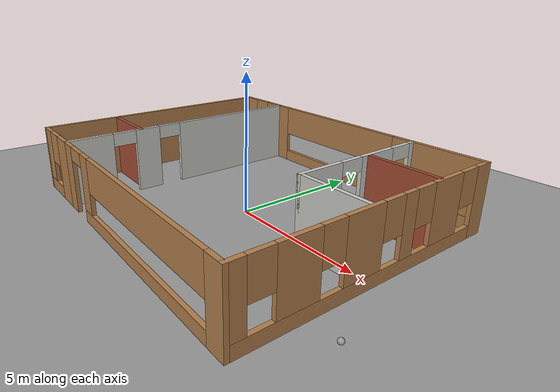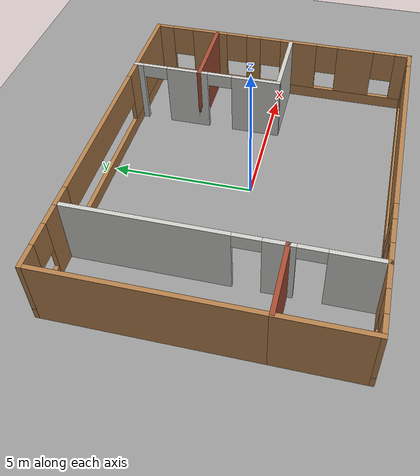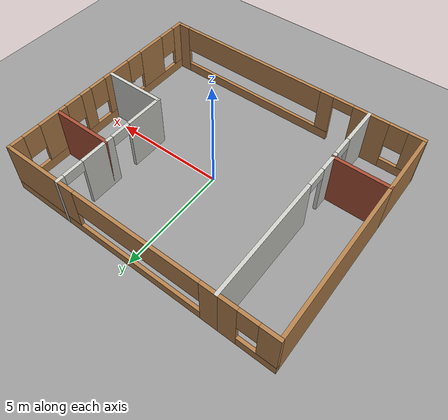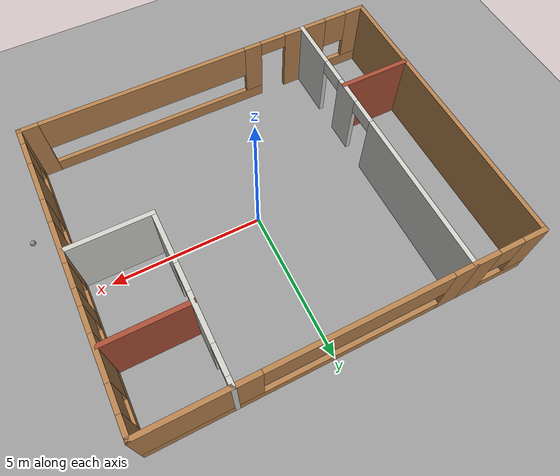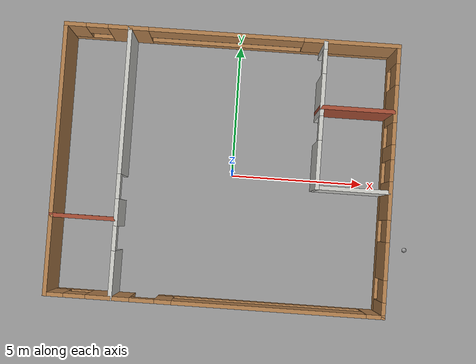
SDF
<sdf version="1.6">
 <world name="default">
  <model name="ground_plane">
   <static>1</static>
   <link name="link">
    <collision name="collision">
     <geometry><plane><normal>0 0 1</normal><size>100 100</size></plane></geometry>
     <surface><friction><ode><mu>100</mu><mu2>50</mu2></ode></friction></surface>
    </collision>
    <visual name="visual">
     <cast_shadows>0</cast_shadows>
     <geometry><plane><normal>0 0 1</normal><size>100 100</size></plane></geometry>
     <material>
      <script><uri>file://media/materials/scripts/gazebo.material</uri><name>Gazebo/Grey</name></script>
     </material>
    </visual>
   </link>
  </model>
  <model name="myhome">
   <pose>-0.34275 0.090909 0 0 -0 0</pose>
   <link name="Wall_0">
    <pose>-3.75 -0.000595 0 0 -0 1.5708</pose>
    <visual name="Wall_0_Visual_0">
     <pose>-4.10972 0 1.25 0 -0 0</pose>
     <geometry><box><size>1.78056 0.15 2.5</size></box></geometry>
     <material>
      <script><uri>file://media/materials/scripts/gazebo.material</uri><name>Gazebo/CeilingTiled</name></script>
      <ambient>0.435294 0.796078 0.67451 1</ambient>
     </material>
     <meta><layer>0</layer></meta>
    </visual>
    <collision name="Wall_0_Collision_0">
     <geometry><box><size>1.78056 0.15 2.5</size></box></geometry>
     <pose>-4.10972 0 1.25 0 -0 0</pose>
    </collision>
    <visual name="Wall_0_Visual_1">
     <pose>-1.82497 0 1.25 0 -0 0</pose>
     <geometry><box><size>0.988927 0.15 2.5</size></box></geometry>
     <material>
      <script><uri>file://media/materials/scripts/gazebo.material</uri><name>Gazebo/CeilingTiled</name></script>
      <ambient>0.435294 0.796078 0.67451 1</ambient>
     </material>
     <meta><layer>0</layer></meta>
    </visual>
    <collision name="Wall_0_Collision_1">
     <geometry><box><size>0.988927 0.15 2.5</size></box></geometry>
     <pose>-1.82497 0 1.25 0 -0 0</pose>
    </collision>
    <visual name="Wall_0_Visual_2">
     <pose>2.28474 0 1.25 0 -0 0</pose>
     <geometry><box><size>5.43051 0.15 2.5</size></box></geometry>
     <material>
      <script><uri>file://media/materials/scripts/gazebo.material</uri><name>Gazebo/CeilingTiled</name></script>
      <ambient>0.435294 0.796078 0.67451 1</ambient>
     </material>
     <meta><layer>0</layer></meta>
    </visual>
    <collision name="Wall_0_Collision_2">
     <geometry><box><size>5.43051 0.15 2.5</size></box></geometry>
     <pose>2.28474 0 1.25 0 -0 0</pose>
    </collision>
    <visual name="Wall_0_Visual_3">
     <pose>-2.76944 0 2.25 0 -0 0</pose>
     <geometry><box><size>0.9 0.15 0.5</size></box></geometry>
     <material>
      <script><uri>file://media/materials/scripts/gazebo.material</uri><name>Gazebo/CeilingTiled</name></script>
      <ambient>0.435294 0.796078 0.67451 1</ambient>
     </material>
     <meta><layer>0</layer></meta>
    </visual>
    <collision name="Wall_0_Collision_3">
     <geometry><box><size>0.9 0.15 0.5</size></box></geometry>
     <pose>-2.76944 0 2.25 0 -0 0</pose>
    </collision>
    <visual name="Wall_0_Visual_4">
     <pose>-0.880511 0 2.25 0 -0 0</pose>
     <geometry><box><size>0.9 0.15 0.5</size></box></geometry>
     <material>
      <script><uri>file://media/materials/scripts/gazebo.material</uri><name>Gazebo/CeilingTiled</name></script>
      <ambient>0.435294 0.796078 0.67451 1</ambient>
     </material>
     <meta><layer>0</layer></meta>
    </visual>
    <collision name="Wall_0_Collision_4">
     <geometry><box><size>0.9 0.15 0.5</size></box></geometry>
     <pose>-0.880511 0 2.25 0 -0 0</pose>
    </collision>
   </link>
   <link name="Wall_1">
    <pose>1.175 4.92441 0 0 -0 0</pose>
    <visual name="Wall_1_Visual_0">
     <pose>-4.62399 0 1.25 0 -0 0</pose>
     <geometry><box><size>0.752024 0.15 2.5</size></box></geometry>
     <material>
      <script><uri>file://media/materials/scripts/gazebo.material</uri><name>Gazebo/Wood</name></script>
      <ambient>1 1 1 1</ambient>
     </material>
     <meta><layer>0</layer></meta>
    </visual>
    <collision name="Wall_1_Collision_0">
     <geometry><box><size>0.752024 0.15 2.5</size></box></geometry>
     <pose>-4.62399 0 1.25 0 -0 0</pose>
    </collision>
    <visual name="Wall_1_Visual_1">
     <pose>0.376012 0 0.25 0 -0 0</pose>
     <geometry><box><size>9.24798 0.15 0.5</size></box></geometry>
     <material>
      <script><uri>file://media/materials/scripts/gazebo.material</uri><name>Gazebo/Wood</name></script>
      <ambient>1 1 1 1</ambient>
     </material>
     <meta><layer>0</layer></meta>
    </visual>
    <collision name="Wall_1_Collision_1">
     <geometry><box><size>9.24798 0.15 0.5</size></box></geometry>
     <pose>0.376012 0 0.25 0 -0 0</pose>
    </collision>
    <visual name="Wall_1_Visual_2">
     <pose>3.22462 0 1.5 0 -0 0</pose>
     <geometry><box><size>3.55076 0.15 2</size></box></geometry>
     <material>
      <script><uri>file://media/materials/scripts/gazebo.material</uri><name>Gazebo/Wood</name></script>
      <ambient>1 1 1 1</ambient>
     </material>
     <meta><layer>0</layer></meta>
    </visual>
    <collision name="Wall_1_Collision_2">
     <geometry><box><size>3.55076 0.15 2</size></box></geometry>
     <pose>3.22462 0 1.5 0 -0 0</pose>
    </collision>
    <visual name="Wall_1_Visual_3">
     <pose>-1.39937 0 1.9 0 -0 0</pose>
     <geometry><box><size>5.69722 0.15 1.2</size></box></geometry>
     <material>
      <script><uri>file://media/materials/scripts/gazebo.material</uri><name>Gazebo/Wood</name></script>
      <ambient>1 1 1 1</ambient>
     </material>
     <meta><layer>0</layer></meta>
    </visual>
    <collision name="Wall_1_Collision_3">
     <geometry><box><size>5.69722 0.15 1.2</size></box></geometry>
     <pose>-1.39937 0 1.9 0 -0 0</pose>
    </collision>
   </link>
   <link name="Wall_10">
    <pose>-4.925 4.92441 0 0 -0 3.14159</pose>
    <visual name="Wall_10_Visual_0">
     <pose>-0.805413 0 1.25 0 -0 0</pose>
     <geometry><box><size>0.889174 0.15 2.5</size></box></geometry>
     <material>
      <script><uri>file://media/materials/scripts/gazebo.material</uri><name>Gazebo/Wood</name></script>
      <ambient>1 1 1 1</ambient>
     </material>
     <meta><layer>0</layer></meta>
    </visual>
    <collision name="Wall_10_Collision_0">
     <geometry><box><size>0.889174 0.15 2.5</size></box></geometry>
     <pose>-0.805413 0 1.25 0 -0 0</pose>
    </collision>
    <visual name="Wall_10_Visual_1">
     <pose>0.444587 0 0.25 0 -0 0</pose>
     <geometry><box><size>1.61083 0.15 0.5</size></box></geometry>
     <material>
      <script><uri>file://media/materials/scripts/gazebo.material</uri><name>Gazebo/Wood</name></script>
      <ambient>1 1 1 1</ambient>
     </material>
     <meta><layer>0</layer></meta>
    </visual>
    <collision name="Wall_10_Collision_1">
     <geometry><box><size>1.61083 0.15 0.5</size></box></geometry>
     <pose>0.444587 0 0.25 0 -0 0</pose>
    </collision>
    <visual name="Wall_10_Visual_2">
     <pose>0.844587 0 1.5 0 -0 0</pose>
     <geometry><box><size>0.810826 0.15 2</size></box></geometry>
     <material>
      <script><uri>file://media/materials/scripts/gazebo.material</uri><name>Gazebo/Wood</name></script>
      <ambient>1 1 1 1</ambient>
     </material>
     <meta><layer>0</layer></meta>
    </visual>
    <collision name="Wall_10_Collision_2">
     <geometry><box><size>0.810826 0.15 2</size></box></geometry>
     <pose>0.844587 0 1.5 0 -0 0</pose>
    </collision>
    <visual name="Wall_10_Visual_3">
     <pose>0.039174 0 1.9 0 -0 0</pose>
     <geometry><box><size>0.8 0.15 1.2</size></box></geometry>
     <material>
      <script><uri>file://media/materials/scripts/gazebo.material</uri><name>Gazebo/Wood</name></script>
      <ambient>1 1 1 1</ambient>
     </material>
     <meta><layer>0</layer></meta>
    </visual>
    <collision name="Wall_10_Collision_3">
     <geometry><box><size>0.8 0.15 1.2</size></box></geometry>
     <pose>0.039174 0 1.9 0 -0 0</pose>
    </collision>
   </link>
   <link name="Wall_12">
    <pose>3.43106 2.2506 0 0 0 -1.5708</pose>
    <visual name="Wall_12_Visual_0">
     <pose>-2.57021 0 1.25 0 -0 0</pose>
     <geometry><box><size>0.359583 0.15 2.5</size></box></geometry>
     <material>
      <script><uri>file://media/materials/scripts/gazebo.material</uri><name>Gazebo/CeilingTiled</name></script>
      <ambient>0.435294 0.796078 0.67451 1</ambient>
     </material>
     <meta><layer>0</layer></meta>
    </visual>
    <collision name="Wall_12_Collision_0">
     <geometry><box><size>0.359583 0.15 2.5</size></box></geometry>
     <pose>-2.57021 0 1.25 0 -0 0</pose>
    </collision>
    <visual name="Wall_12_Visual_1">
     <pose>-0.716113 0 1.25 0 -0 0</pose>
     <geometry><box><size>1.54861 0.15 2.5</size></box></geometry>
     <material>
      <script><uri>file://media/materials/scripts/gazebo.material</uri><name>Gazebo/CeilingTiled</name></script>
      <ambient>0.435294 0.796078 0.67451 1</ambient>
     </material>
     <meta><layer>0</layer></meta>
    </visual>
    <collision name="Wall_12_Collision_1">
     <geometry><box><size>1.54861 0.15 2.5</size></box></geometry>
     <pose>-0.716113 0 1.25 0 -0 0</pose>
    </collision>
    <visual name="Wall_12_Visual_2">
     <pose>1.8541 0 1.25 0 -0 0</pose>
     <geometry><box><size>1.79181 0.15 2.5</size></box></geometry>
     <material>
      <script><uri>file://media/materials/scripts/gazebo.material</uri><name>Gazebo/CeilingTiled</name></script>
      <ambient>0.435294 0.796078 0.67451 1</ambient>
     </material>
     <meta><layer>0</layer></meta>
    </visual>
    <collision name="Wall_12_Collision_2">
     <geometry><box><size>1.79181 0.15 2.5</size></box></geometry>
     <pose>1.8541 0 1.25 0 -0 0</pose>
    </collision>
    <visual name="Wall_12_Visual_3">
     <pose>-1.94042 0 2.25 0 -0 0</pose>
     <geometry><box><size>0.9 0.15 0.5</size></box></geometry>
     <material>
      <script><uri>file://media/materials/scripts/gazebo.material</uri><name>Gazebo/CeilingTiled</name></script>
      <ambient>0.435294 0.796078 0.67451 1</ambient>
     </material>
     <meta><layer>0</layer></meta>
    </visual>
    <collision name="Wall_12_Collision_3">
     <geometry><box><size>0.9 0.15 0.5</size></box></geometry>
     <pose>-1.94042 0 2.25 0 -0 0</pose>
    </collision>
    <visual name="Wall_12_Visual_4">
     <pose>0.508191 0 2.25 0 -0 0</pose>
     <geometry><box><size>0.9 0.15 0.5</size></box></geometry>
     <material>
      <script><uri>file://media/materials/scripts/gazebo.material</uri><name>Gazebo/CeilingTiled</name></script>
      <ambient>0.435294 0.796078 0.67451 1</ambient>
     </material>
     <meta><layer>0</layer></meta>
    </visual>
    <collision name="Wall_12_Collision_4">
     <geometry><box><size>0.9 0.15 0.5</size></box></geometry>
     <pose>0.508191 0 2.25 0 -0 0</pose>
    </collision>
   </link>
   <link name="Wall_13">
    <collision name="Wall_13_Collision">
     <geometry><box><size>2.75 0.15 2.5</size></box></geometry>
     <pose>0 0 1.25 0 -0 0</pose>
    </collision>
    <visual name="Wall_13_Visual">
     <pose>0 0 1.25 0 -0 0</pose>
     <geometry><box><size>2.75 0.15 2.5</size></box></geometry>
     <material>
      <script><uri>file://media/materials/scripts/gazebo.material</uri><name>Gazebo/CeilingTiled</name></script>
      <ambient>0.435294 0.796078 0.67451 1</ambient>
     </material>
     <meta><layer>0</layer></meta>
    </visual>
    <pose>4.73106 -0.424405 0 0 -0 0</pose>
   </link>
   <link name="Wall_15">
    <collision name="Wall_15_Collision">
     <geometry><box><size>2.75 0.15 2.5</size></box></geometry>
     <pose>0 0 1.25 0 -0 0</pose>
    </collision>
    <visual name="Wall_15_Visual">
     <pose>0 0 1.25 0 -0 0</pose>
     <geometry><box><size>2.75 0.15 2.5</size></box></geometry>
     <material>
      <script><uri>file://media/materials/scripts/gazebo.material</uri><name>Gazebo/Bricks</name></script>
      <ambient>1 1 1 1</ambient>
     </material>
     <meta><layer>0</layer></meta>
    </visual>
    <pose>4.73106 2.51197 0 0 -0 0</pose>
   </link>
   <link name="Wall_2">
    <pose>6.1 -0.000595 0 0 0 -1.5708</pose>
    <visual name="Wall_2_Visual_0">
     <pose>-4.64714 0 1.25 0 -0 0</pose>
     <geometry><box><size>0.705724 0.15 2.5</size></box></geometry>
     <material>
      <script><uri>file://media/materials/scripts/gazebo.material</uri><name>Gazebo/Wood</name></script>
      <ambient>1 1 1 1</ambient>
     </material>
     <meta><layer>0</layer></meta>
    </visual>
    <collision name="Wall_2_Collision_0">
     <geometry><box><size>0.705724 0.15 2.5</size></box></geometry>
     <pose>-4.64714 0 1.25 0 -0 0</pose>
    </collision>
    <visual name="Wall_2_Visual_1">
     <pose>0.352862 0 0.25 0 -0 0</pose>
     <geometry><box><size>9.29428 0.15 0.5</size></box></geometry>
     <material>
      <script><uri>file://media/materials/scripts/gazebo.material</uri><name>Gazebo/Wood</name></script>
      <ambient>1 1 1 1</ambient>
     </material>
     <meta><layer>0</layer></meta>
    </visual>
    <collision name="Wall_2_Collision_1">
     <geometry><box><size>9.29428 0.15 0.5</size></box></geometry>
     <pose>0.352862 0 0.25 0 -0 0</pose>
    </collision>
    <visual name="Wall_2_Visual_2">
     <pose>-2.80989 0 1.5 0 -0 0</pose>
     <geometry><box><size>1.36877 0.15 2</size></box></geometry>
     <material>
      <script><uri>file://media/materials/scripts/gazebo.material</uri><name>Gazebo/Wood</name></script>
      <ambient>1 1 1 1</ambient>
     </material>
     <meta><layer>0</layer></meta>
    </visual>
    <collision name="Wall_2_Collision_2">
     <geometry><box><size>1.36877 0.15 2</size></box></geometry>
     <pose>-2.80989 0 1.5 0 -0 0</pose>
    </collision>
    <visual name="Wall_2_Visual_3">
     <pose>-1.05214 0 1.5 0 -0 0</pose>
     <geometry><box><size>0.546735 0.15 2</size></box></geometry>
     <material>
      <script><uri>file://media/materials/scripts/gazebo.material</uri><name>Gazebo/Wood</name></script>
      <ambient>1 1 1 1</ambient>
     </material>
     <meta><layer>0</layer></meta>
    </visual>
    <collision name="Wall_2_Collision_3">
     <geometry><box><size>0.546735 0.15 2</size></box></geometry>
     <pose>-1.05214 0 1.5 0 -0 0</pose>
    </collision>
    <visual name="Wall_2_Visual_4">
     <pose>0.7231 0 1.5 0 -0 0</pose>
     <geometry><box><size>1.40375 0.15 2</size></box></geometry>
     <material>
      <script><uri>file://media/materials/scripts/gazebo.material</uri><name>Gazebo/Wood</name></script>
      <ambient>1 1 1 1</ambient>
     </material>
     <meta><layer>0</layer></meta>
    </visual>
    <collision name="Wall_2_Collision_4">
     <geometry><box><size>1.40375 0.15 2</size></box></geometry>
     <pose>0.7231 0 1.5 0 -0 0</pose>
    </collision>
    <visual name="Wall_2_Visual_5">
     <pose>2.90936 0 1.5 0 -0 0</pose>
     <geometry><box><size>1.36877 0.15 2</size></box></geometry>
     <material>
      <script><uri>file://media/materials/scripts/gazebo.material</uri><name>Gazebo/Wood</name></script>
      <ambient>1 1 1 1</ambient>
     </material>
     <meta><layer>0</layer></meta>
    </visual>
    <collision name="Wall_2_Collision_5">
     <geometry><box><size>1.36877 0.15 2</size></box></geometry>
     <pose>2.90936 0 1.5 0 -0 0</pose>
    </collision>
    <visual name="Wall_2_Visual_6">
     <pose>4.69687 0 1.5 0 -0 0</pose>
     <geometry><box><size>0.606258 0.15 2</size></box></geometry>
     <material>
      <script><uri>file://media/materials/scripts/gazebo.material</uri><name>Gazebo/Wood</name></script>
      <ambient>1 1 1 1</ambient>
     </material>
     <meta><layer>0</layer></meta>
    </visual>
    <collision name="Wall_2_Collision_6">
     <geometry><box><size>0.606258 0.15 2</size></box></geometry>
     <pose>4.69687 0 1.5 0 -0 0</pose>
    </collision>
    <visual name="Wall_2_Visual_7">
     <pose>-3.89428 0 1.9 0 -0 0</pose>
     <geometry><box><size>0.8 0.15 1.2</size></box></geometry>
     <material>
      <script><uri>file://media/materials/scripts/gazebo.material</uri><name>Gazebo/Wood</name></script>
      <ambient>1 1 1 1</ambient>
     </material>
     <meta><layer>0</layer></meta>
    </visual>
    <collision name="Wall_2_Collision_7">
     <geometry><box><size>0.8 0.15 1.2</size></box></geometry>
     <pose>-3.89428 0 1.9 0 -0 0</pose>
    </collision>
    <visual name="Wall_2_Visual_8">
     <pose>-1.72551 0 1.9 0 -0 0</pose>
     <geometry><box><size>0.8 0.15 1.2</size></box></geometry>
     <material>
      <script><uri>file://media/materials/scripts/gazebo.material</uri><name>Gazebo/Wood</name></script>
      <ambient>1 1 1 1</ambient>
     </material>
     <meta><layer>0</layer></meta>
    </visual>
    <collision name="Wall_2_Collision_8">
     <geometry><box><size>0.8 0.15 1.2</size></box></geometry>
     <pose>-1.72551 0 1.9 0 -0 0</pose>
    </collision>
    <visual name="Wall_2_Visual_9">
     <pose>-0.378773 0 1.9 0 -0 0</pose>
     <geometry><box><size>0.8 0.15 1.2</size></box></geometry>
     <material>
      <script><uri>file://media/materials/scripts/gazebo.material</uri><name>Gazebo/Wood</name></script>
      <ambient>1 1 1 1</ambient>
     </material>
     <meta><layer>0</layer></meta>
    </visual>
    <collision name="Wall_2_Collision_9">
     <geometry><box><size>0.8 0.15 1.2</size></box></geometry>
     <pose>-0.378773 0 1.9 0 -0 0</pose>
    </collision>
    <visual name="Wall_2_Visual_10">
     <pose>1.82497 0 1.9 0 -0 0</pose>
     <geometry><box><size>0.8 0.15 1.2</size></box></geometry>
     <material>
      <script><uri>file://media/materials/scripts/gazebo.material</uri><name>Gazebo/Wood</name></script>
      <ambient>1 1 1 1</ambient>
     </material>
     <meta><layer>0</layer></meta>
    </visual>
    <collision name="Wall_2_Collision_10">
     <geometry><box><size>0.8 0.15 1.2</size></box></geometry>
     <pose>1.82497 0 1.9 0 -0 0</pose>
    </collision>
    <visual name="Wall_2_Visual_11">
     <pose>3.99374 0 1.9 0 -0 0</pose>
     <geometry><box><size>0.8 0.15 1.2</size></box></geometry>
     <material>
      <script><uri>file://media/materials/scripts/gazebo.material</uri><name>Gazebo/Wood</name></script>
      <ambient>1 1 1 1</ambient>
     </material>
     <meta><layer>0</layer></meta>
    </visual>
    <collision name="Wall_2_Collision_11">
     <geometry><box><size>0.8 0.15 1.2</size></box></geometry>
     <pose>3.99374 0 1.9 0 -0 0</pose>
    </collision>
   </link>
   <link name="Wall_3">
    <pose>1.175 -4.9256 0 0 -0 3.14159</pose>
    <visual name="Wall_3_Visual_0">
     <pose>-4.65881 0 1.25 0 -0 0</pose>
     <geometry><box><size>0.682388 0.15 2.5</size></box></geometry>
     <material>
      <script><uri>file://media/materials/scripts/gazebo.material</uri><name>Gazebo/Wood</name></script>
      <ambient>1 1 1 1</ambient>
     </material>
     <meta><layer>0</layer></meta>
    </visual>
    <collision name="Wall_3_Collision_0">
     <geometry><box><size>0.682388 0.15 2.5</size></box></geometry>
     <pose>-4.65881 0 1.25 0 -0 0</pose>
    </collision>
    <visual name="Wall_3_Visual_1">
     <pose>4.61401 0 1.25 0 -0 0</pose>
     <geometry><box><size>0.771985 0.15 2.5</size></box></geometry>
     <material>
      <script><uri>file://media/materials/scripts/gazebo.material</uri><name>Gazebo/Wood</name></script>
      <ambient>1 1 1 1</ambient>
     </material>
     <meta><layer>0</layer></meta>
    </visual>
    <collision name="Wall_3_Collision_1">
     <geometry><box><size>0.771985 0.15 2.5</size></box></geometry>
     <pose>4.61401 0 1.25 0 -0 0</pose>
    </collision>
    <visual name="Wall_3_Visual_2">
     <pose>-0.494798 0 0.25 0 -0 0</pose>
     <geometry><box><size>7.64563 0.15 0.5</size></box></geometry>
     <material>
      <script><uri>file://media/materials/scripts/gazebo.material</uri><name>Gazebo/Wood</name></script>
      <ambient>1 1 1 1</ambient>
     </material>
     <meta><layer>0</layer></meta>
    </visual>
    <collision name="Wall_3_Collision_2">
     <geometry><box><size>7.64563 0.15 0.5</size></box></geometry>
     <pose>-0.494798 0 0.25 0 -0 0</pose>
    </collision>
    <visual name="Wall_3_Visual_3">
     <pose>3.01843 0 1.5 0 -0 0</pose>
     <geometry><box><size>0.619165 0.15 2</size></box></geometry>
     <material>
      <script><uri>file://media/materials/scripts/gazebo.material</uri><name>Gazebo/Wood</name></script>
      <ambient>1 1 1 1</ambient>
     </material>
     <meta><layer>0</layer></meta>
    </visual>
    <collision name="Wall_3_Collision_3">
     <geometry><box><size>0.619165 0.15 2</size></box></geometry>
     <pose>3.01843 0 1.5 0 -0 0</pose>
    </collision>
    <visual name="Wall_3_Visual_4">
     <pose>-0.804381 0 1.9 0 -0 0</pose>
     <geometry><box><size>7.02646 0.15 1.2</size></box></geometry>
     <material>
      <script><uri>file://media/materials/scripts/gazebo.material</uri><name>Gazebo/Wood</name></script>
      <ambient>1 1 1 1</ambient>
     </material>
     <meta><layer>0</layer></meta>
    </visual>
    <collision name="Wall_3_Collision_4">
     <geometry><box><size>7.02646 0.15 1.2</size></box></geometry>
     <pose>-0.804381 0 1.9 0 -0 0</pose>
    </collision>
    <visual name="Wall_3_Visual_5">
     <pose>3.77801 0 2.25 0 -0 0</pose>
     <geometry><box><size>0.9 0.15 0.5</size></box></geometry>
     <material>
      <script><uri>file://media/materials/scripts/gazebo.material</uri><name>Gazebo/Wood</name></script>
      <ambient>1 1 1 1</ambient>
     </material>
     <meta><layer>0</layer></meta>
    </visual>
    <collision name="Wall_3_Collision_5">
     <geometry><box><size>0.9 0.15 0.5</size></box></geometry>
     <pose>3.77801 0 2.25 0 -0 0</pose>
    </collision>
   </link>
   <link name="Wall_4">
    <pose>-4.925 -4.9256 0 0 -0 3.14159</pose>
    <visual name="Wall_4_Visual_0">
     <pose>-0.770433 0 1.25 0 -0 0</pose>
     <geometry><box><size>0.959134 0.15 2.5</size></box></geometry>
     <material>
      <script><uri>file://media/materials/scripts/gazebo.material</uri><name>Gazebo/Wood</name></script>
      <ambient>1 1 1 1</ambient>
     </material>
     <meta><layer>0</layer></meta>
    </visual>
    <collision name="Wall_4_Collision_0">
     <geometry><box><size>0.959134 0.15 2.5</size></box></geometry>
     <pose>-0.770433 0 1.25 0 -0 0</pose>
    </collision>
    <visual name="Wall_4_Visual_1">
     <pose>0.479567 0 0.25 0 -0 0</pose>
     <geometry><box><size>1.54087 0.15 0.5</size></box></geometry>
     <material>
      <script><uri>file://media/materials/scripts/gazebo.material</uri><name>Gazebo/Wood</name></script>
      <ambient>1 1 1 1</ambient>
     </material>
     <meta><layer>0</layer></meta>
    </visual>
    <collision name="Wall_4_Collision_1">
     <geometry><box><size>1.54087 0.15 0.5</size></box></geometry>
     <pose>0.479567 0 0.25 0 -0 0</pose>
    </collision>
    <visual name="Wall_4_Visual_2">
     <pose>0.879567 0 1.5 0 -0 0</pose>
     <geometry><box><size>0.740866 0.15 2</size></box></geometry>
     <material>
      <script><uri>file://media/materials/scripts/gazebo.material</uri><name>Gazebo/Wood</name></script>
      <ambient>1 1 1 1</ambient>
     </material>
     <meta><layer>0</layer></meta>
    </visual>
    <collision name="Wall_4_Collision_2">
     <geometry><box><size>0.740866 0.15 2</size></box></geometry>
     <pose>0.879567 0 1.5 0 -0 0</pose>
    </collision>
    <visual name="Wall_4_Visual_3">
     <pose>0.109134 0 1.9 0 -0 0</pose>
     <geometry><box><size>0.8 0.15 1.2</size></box></geometry>
     <material>
      <script><uri>file://media/materials/scripts/gazebo.material</uri><name>Gazebo/Wood</name></script>
      <ambient>1 1 1 1</ambient>
     </material>
     <meta><layer>0</layer></meta>
    </visual>
    <collision name="Wall_4_Collision_3">
     <geometry><box><size>0.8 0.15 1.2</size></box></geometry>
     <pose>0.109134 0 1.9 0 -0 0</pose>
    </collision>
   </link>
   <link name="Wall_5">
    <collision name="Wall_5_Collision">
     <geometry><box><size>3 0.15 2.5</size></box></geometry>
     <pose>0 0 1.25 0 -0 0</pose>
    </collision>
    <visual name="Wall_5_Visual">
     <pose>0 0 1.25 0 -0 0</pose>
     <geometry><box><size>3 0.15 2.5</size></box></geometry>
     <material>
      <script><uri>file://media/materials/scripts/gazebo.material</uri><name>Gazebo/Wood</name></script>
      <ambient>1 1 1 1</ambient>
     </material>
     <meta><layer>0</layer></meta>
    </visual>
    <pose>-6.1 -3.5006 0 0 -0 1.5708</pose>
   </link>
   <link name="Wall_6">
    <collision name="Wall_6_Collision">
     <geometry><box><size>2.5 0.15 2.5</size></box></geometry>
     <pose>0 0 1.25 0 -0 0</pose>
    </collision>
    <visual name="Wall_6_Visual">
     <pose>0 0 1.25 0 -0 0</pose>
     <geometry><box><size>2.5 0.15 2.5</size></box></geometry>
     <material>
      <script><uri>file://media/materials/scripts/gazebo.material</uri><name>Gazebo/Bricks</name></script>
      <ambient>1 1 1 1</ambient>
     </material>
     <meta><layer>0</layer></meta>
    </visual>
    <pose>-4.925 -2.07559 0 0 -0 0</pose>
   </link>
   <link name="Wall_8">
    <collision name="Wall_8_Collision">
     <geometry><box><size>7 0.15 2.5</size></box></geometry>
     <pose>0 0 1.25 0 -0 0</pose>
    </collision>
    <visual name="Wall_8_Visual">
     <pose>0 0 1.25 0 -0 0</pose>
     <geometry><box><size>7 0.15 2.5</size></box></geometry>
     <material>
      <script><uri>file://media/materials/scripts/gazebo.material</uri><name>Gazebo/Wood</name></script>
      <ambient>1 1 1 1</ambient>
     </material>
     <meta><layer>0</layer></meta>
    </visual>
    <pose>-6.1 1.3494 0 0 -0 1.5708</pose>
   </link>
   <static>1</static>
  </model>
  <model name="ground_plane_1">
   <static>1</static>
   <link name="link">
    <collision name="collision">
     <geometry><plane><normal>0 0 1</normal><size>100 100</size></plane></geometry>
     <surface>
      <contact><collide_bitmask>65535</collide_bitmask></contact>
      <friction><ode><mu>100</mu><mu2>50</mu2></ode></friction>
     </surface>
    </collision>
    <visual name="visual">
     <cast_shadows>0</cast_shadows>
     <geometry><plane><normal>0 0 1</normal><size>100 100</size></plane></geometry>
     <material>
      <script><uri>file://media/materials/scripts/gazebo.material</uri><name>Gazebo/Grey</name></script>
     </material>
    </visual>
   </link>
   <pose>-2.73734 -0.185768 0 0 -0 0</pose>
  </model>
  <model name="my_ball">
   <link name="link_0">
    <inertial>
     <mass>1</mass>
     <inertia><ixx>0.1</ixx><ixy>0</ixy><ixz>0</ixz><iyy>0.1</iyy><iyz>0</iyz><izz>0.1</izz></inertia>
    </inertial>
    <visual name="visual">
     <geometry><sphere><radius>0.09</radius></sphere></geometry>
     <material>
      <lighting>1</lighting>
      <script><uri>file://media/materials/scripts/gazebo.material</uri><name>Gazebo/Grey</name></script>
      <shader type="pixel"><normal_map>__default__</normal_map></shader>
      <ambient>1 1 1 1</ambient>
      <diffuse>1 1 1 1</diffuse>
      <specular>1 1 1 1</specular>
      <emissive>1 1 1 1</emissive>
     </material>
    </visual>
    <collision name="collision">
     <geometry><sphere><radius>0.1</radius></sphere></geometry>
     <surface>
      <friction>
       <ode><mu>1</mu><mu2>1</mu2><fdir1>0 0 0</fdir1><slip1>0</slip1><slip2>0</slip2></ode>
       <torsional>
        <coefficient>1</coefficient>
        <patch_radius>0</patch_radius>
        <surface_radius>0</surface_radius>
        <use_patch_radius>1</use_patch_radius>
        <ode><slip>0</slip></ode>
       </torsional>
      </friction>
      <bounce><restitution_coefficient>0</restitution_coefficient><threshold>1e+06</threshold></bounce>
      <contact>
       <collide_without_contact>0</collide_without_contact>
       <collide_without_contact_bitmask>1</collide_without_contact_bitmask>
       <collide_bitmask>1</collide_bitmask>
       <ode>
        <soft_cfm>0</soft_cfm>
        <soft_erp>0.2</soft_erp>
        <kp>1e+13</kp>
        <kd>1</kd>
        <max_vel>0.01</max_vel>
        <min_depth>0</min_depth>
       </ode>
       <bullet>
        <split_impulse>1</split_impulse>
        <split_impulse_penetration_threshold>-0.01</split_impulse_penetration_threshold>
        <soft_cfm>0</soft_cfm>
        <soft_erp>0.2</soft_erp>
        <kp>1e+13</kp>
        <kd>1</kd>
       </bullet>
      </contact>
     </surface>
    </collision>
   </link>
   <static>0</static>
   <pose>6.79625 -2.40633 0.1 0 -0 0</pose>
  </model>
 </world>
</sdf>
